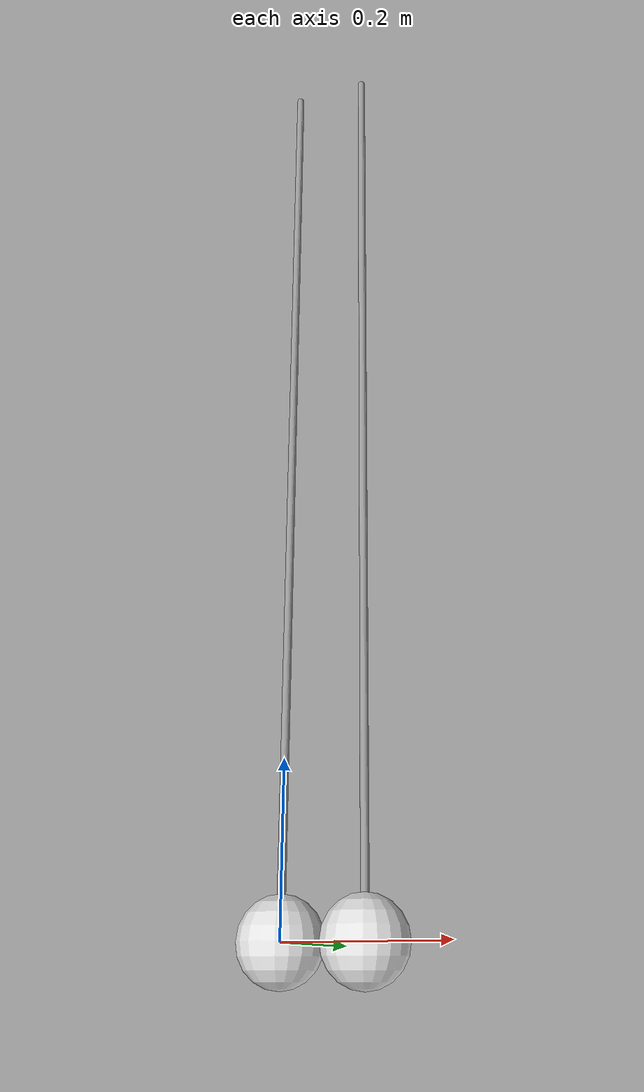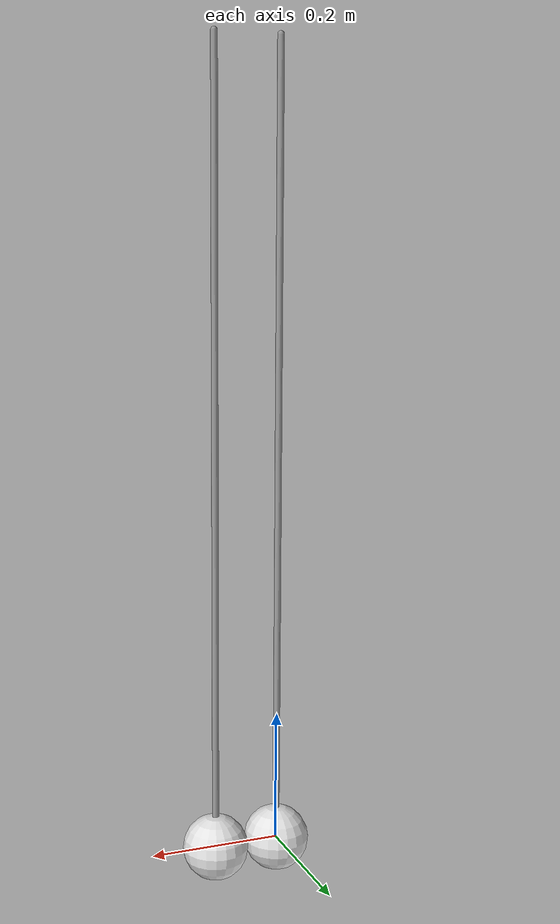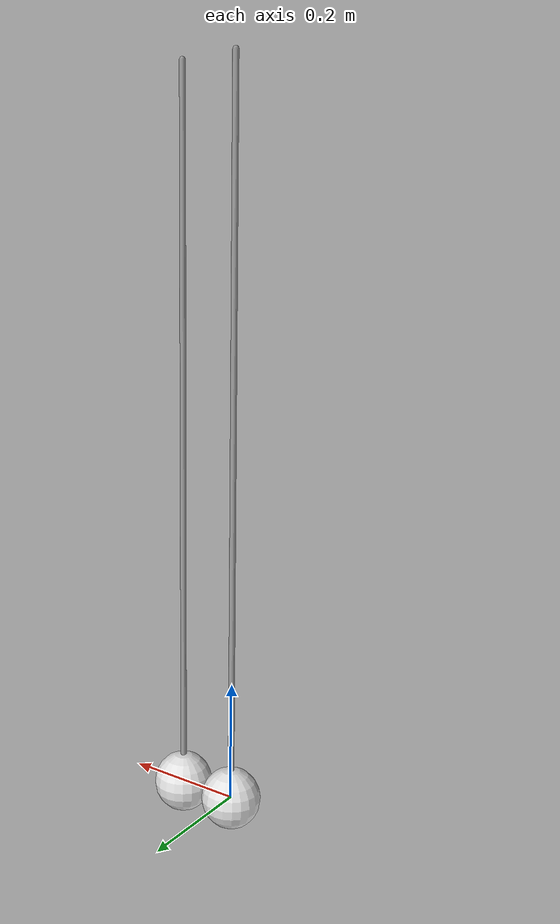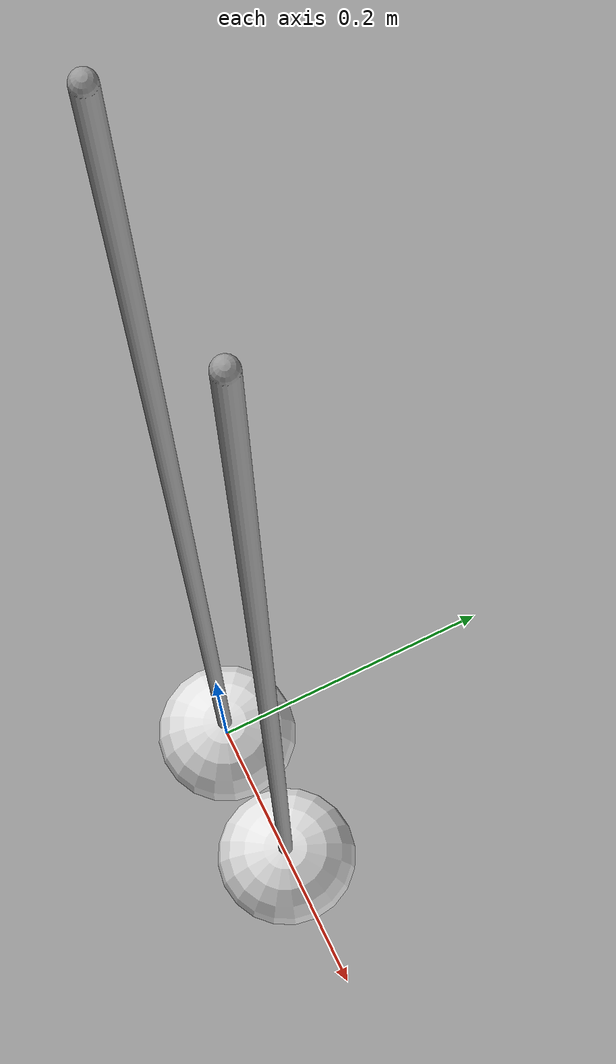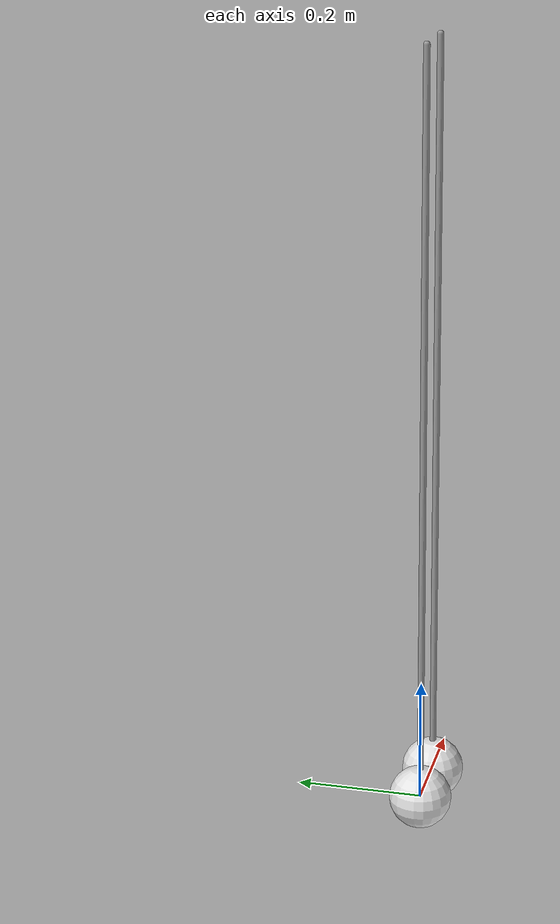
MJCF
<mujoco model="newtons_cradle">
    <compiler angle="degree" coordinate="local"/>
    <worldbody>
        <body name="rod1" pos="0 0 1.2">
            <joint type="hinge" axis="0 1 0"/>
            <geom type="capsule" fromto="0 0 0 0 0 -1.2" size="0.005" rgba="0.6 0.6 0.6 1"/>
            <body pos="0 0 -1.2">
                <geom type="sphere" size="0.05" rgba="0.9 0.9 0.9 1" density="1000"/>
            </body>
        </body>
        <body name="rod2" pos="0.1 0 1.2">
            <joint type="hinge" axis="0 1 0"/>
            <geom type="capsule" fromto="0 0 0 0 0 -1.2" size="0.005" rgba="0.6 0.6 0.6 1"/>
            <body pos="0 0 -1.2">
                <geom type="sphere" size="0.05" rgba="0.9 0.9 0.9 1" density="1000"/>
            </body>
        </body>
    </worldbody>
    <actuator/>
</mujoco>
